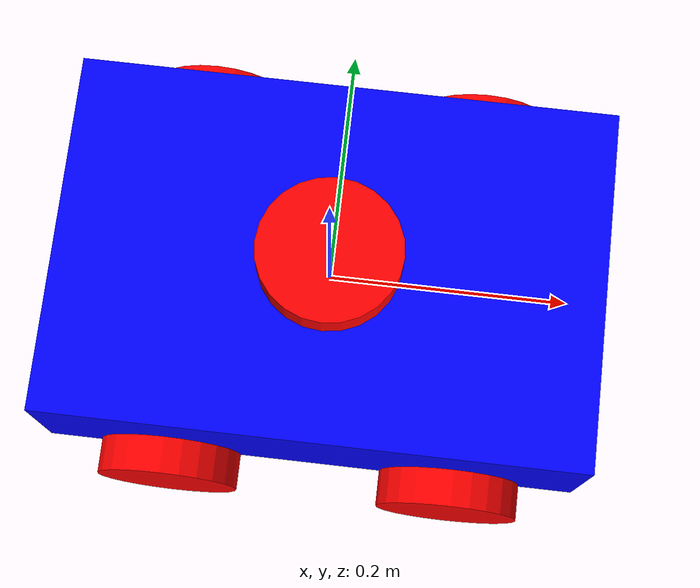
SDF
<sdf version='1.11'>
	<model name='Mobile_robot'>
		<link name='chassis'>
			<pose> 0 0 0 0 0 0</pose>
			<inertial>
				<mass>2</mass>
				<inertia>
					<ixx>0.03375</ixx>
					<ixy>0</ixy>
					<ixz>0</ixz>
					<iyy>0.015</iyy>
					<iyz>0</iyz>
					<izz>0.04875</izz>
				</inertia>
			</inertial>
			<visual name='visual'>
				<geometry>
					<box>
						<size>0.45 0.3 0.12</size>
					</box>
				</geometry>
				<material>
					<ambient>0.0 0.0 1.0 1</ambient>
					<diffuse>0.0 0.0 1.0 1</diffuse>
					<specular>0.0 0.0 1.0 1</specular>
				</material>
			</visual>
			<collision name='collision'>
				<geometry>
					<box>
						<size>0.45 0.3 0.12</size>
					</box>
				</geometry>
			</collision>
		</link>
		<link name='front_left_wheel'>
			<pose relative_to="chassis">0.12 0.165 -0.06 -1.5707 0 0</pose>
			<inertial>
				<mass>1</mass>
				<inertia>
					<ixx>0.000975</ixx>
					<ixy>0</ixy>
					<ixz>0</ixz>
					<iyy>0.000975</iyy>
					<iyz>0</iyz>
					<izz>0.0018</izz>
				</inertia>
			</inertial>
			<visual name='visual'>
				<geometry>
					<cylinder>
						<radius>0.06</radius>
						<length>0.03</length>
					</cylinder>
				</geometry>
				<material>
					<ambient>1.0 0.0 0.0 1</ambient>
					<diffuse>1.0 0.0 0.0 1</diffuse>
					<specular>1.0 0.0 0.0 1</specular>
				</material>
			</visual>
			<collision name='collision'>
				<geometry>
					<cylinder>
						<radius>0.06</radius>
						<length>0.03</length>
					</cylinder>
				</geometry>
			</collision>
		</link>
		<joint name='front_left_wheel_joint' type='revolute'>
			<pose relative_to='front_left_wheel'/>
			<parent>chassis</parent>
			<child>front_left_wheel</child>
			<axis>
				<xyz expressed_in='__model__'>0 1 0</xyz>
				<limit>
					<lower>-1.79769e+308</lower> <!--negative infinity-->
					<upper>1.79769e+308</upper> <!--positive infinity-->
				</limit>
			</axis>
		</joint>
		<link name='rear_left_wheel'>
			<pose relative_to="chassis">-0.12 0.165 -0.06 -1.5707 0 0</pose>
			<inertial>
				<mass>1</mass>
				<inertia>
					<ixx>0.000975</ixx>
					<ixy>0</ixy>
					<ixz>0</ixz>
					<iyy>0.000975</iyy>
					<iyz>0</iyz>
					<izz>0.00018</izz>
				</inertia>
			</inertial>
			<visual name='visual'>
				<geometry>
					<cylinder>
						<radius>0.06</radius>
						<length>0.03</length>
					</cylinder>
				</geometry>
				<material>
					<ambient>1.0 0.0 0.0 1</ambient>
					<diffuse>1.0 0.0 0.0 1</diffuse>
					<specular>1.0 0.0 0.0 1</specular>
				</material>
			</visual>
			<collision name='collision'>
				<geometry>
					<cylinder>
						<radius>0.06</radius>
						<length>0.03</length>
					</cylinder>
				</geometry>
			</collision>
		</link>
		<joint name='rear_left_wheel_joint' type='revolute'>
			<pose relative_to='rear_left_wheel'/>
			<parent>chassis</parent>
			<child>rear_left_wheel</child>
			<axis>
				<xyz expressed_in='__model__'>0 1 0</xyz>
				<limit>
					<lower>-1.79769e+308</lower>
					<upper>1.79769e+308</upper>
				</limit>
			</axis>
		</joint>
		<link name='front_right_wheel'>
			<pose relative_to="chassis">0.12 -0.165 -0.06 -1.5707 0 0</pose>
			<inertial>
				<mass>1</mass>
				<inertia>
					<ixx>0.000975</ixx>
					<ixy>0</ixy>
					<ixz>0</ixz>
					<iyy>0.000975</iyy>
					<iyz>0</iyz>
					<izz>0.0018</izz>
				</inertia>
			</inertial>
			<visual name='visual'>
				<geometry>
					<cylinder>
						<radius>0.06</radius>
						<length>0.03</length>
					</cylinder>
				</geometry>
				<material>
					<ambient>1.0 0.0 0.0 1</ambient>
					<diffuse>1.0 0.0 0.0 1</diffuse>
					<specular>1.0 0.0 0.0 1</specular>
				</material>
			</visual>
			<collision name='collision'>
				<geometry>
					<cylinder>
						<radius>0.06</radius>
						<length>0.03</length>
					</cylinder>
				</geometry>
			</collision>
		</link>
		<joint name='front_right_wheel_joint' type='revolute'>
			<pose relative_to='front_right_wheel'/>
			<parent>chassis</parent>
			<child>front_right_wheel</child>
			<axis>
				<xyz expressed_in='__model__'>0 1 0</xyz>
				<limit>
					<lower>-1.79769e+308</lower>
					<upper>1.79769e+308</upper>
				</limit>
			</axis>
		</joint>
		<link name='rear_right_wheel'>
			<pose relative_to="chassis">-0.12 -0.165 -0.06 -1.5707 0 0</pose>
			<inertial>
				<mass>1</mass>
				<inertia>
					<ixx>0.000975</ixx>
					<ixy>0</ixy>
					<ixz>0</ixz>
					<iyy>0.000975</iyy>
					<iyz>0</iyz>
					<izz>0.0018</izz>
				</inertia>
			</inertial>
			<visual name='visual'>
				<geometry>
					<cylinder>
						<radius>0.06</radius>
						<length>0.03</length>
					</cylinder>
				</geometry>
				<material>
					<ambient>1.0 0.0 0.0 1</ambient>
					<diffuse>1.0 0.0 0.0 1</diffuse>
					<specular>1.0 0.0 0.0 1</specular>
				</material>
			</visual>
			<collision name='collision'>
				<geometry>
					<cylinder>
						<radius>0.06</radius>
						<length>0.03</length>
					</cylinder>
				</geometry>
			</collision>
		</link>
		<joint name='rear_right_wheel_joint' type='revolute'>
			<pose relative_to='rear_right_wheel'/>
			<parent>chassis</parent>
			<child>rear_right_wheel</child>
			<axis>
				<xyz expressed_in='__model__'>0 1 0</xyz>
				<limit>
					<lower>-1.79769e+308</lower>
					<upper>1.79769e+308</upper>
				</limit>
			</axis>
		</joint>
		<link name='lidar_frame'>
			<pose relative_to="chassis">0 0 0.075 0 0 0</pose>
			<inertial>
				<mass>1</mass>
				<inertia>
					<ixx>0.000975</ixx>
					<ixy>0</ixy>
					<ixz>0</ixz>
					<iyy>0.000975</iyy>
					<iyz>0</iyz>
					<izz>0.0018</izz>
				</inertia>
			</inertial>
			<visual name='visual'>
				<geometry>
					<cylinder>
						<radius>0.06</radius>
						<length>0.03</length>
					</cylinder>
				</geometry>
				<material>
					<ambient>1.0 0.0 0.0 1</ambient>
					<diffuse>1.0 0.0 0.0 1</diffuse>
					<specular>1.0 0.0 0.0 1</specular>
				</material>
			</visual>
			<collision name='collision'>
				<geometry>
					<cylinder>
						<radius>0.06</radius>
						<length>0.03</length>
					</cylinder>
				</geometry>
			</collision>
		</link>
		<joint name='lidar_frame_joint' type='fixed'>
			<pose relative_to='lidar_frame'/>
			<parent>chassis</parent>
			<child>lidar_frame</child>
			<axis>
				<xyz expressed_in='__model__'>0 1 0</xyz>
			</axis>
		</joint>
		<gazebo refrence='lidar_frame'>
			<sensor name='lidar' type='gpu_lidar'>
				<pose>0 0 0 0 0 0</pose>
				<visualize>false</visualize>
				<update_rate>10</update_rate>
				<lidar>
					<scan>
						<horizontal>
							<samples>360</samples>
							<min_angle>-3.14</min_angle>
							<max_angle>3.14</max_angle>
						</horizontal>
					</scan>
					<range>
						<min>0.3</min>
						<max>12</max>
					</range>
				</lidar>
				<topic>scan</topic>
				<gz_frame_id>lidar_frame</gz_frame_id>
			</sensor>
		</gazebo>
		<plugin
			filename="gz-sim-diff-drive-system"
			name="gz::sim::systems::DiffDrive">
			<left_joint>front_left_wheel_joint</left_joint>
			<right_joint>front_right_wheel_joint</right_joint>
			<wheel_separation>0.48</wheel_separation>
			<wheel_radius>0.06</wheel_radius>
			<topic>/cmd_vel</topic>
		</plugin>
		<plugin
                        filename="gz-sim-diff-drive-system"
                        name="gz::sim::systems::DiffDrive">
                        <left_joint>rear_left_wheel_joint</left_joint>
                        <right_joint>rear_right_wheel_joint</right_joint>
                        <wheel_separation>0.48</wheel_separation>
                        <wheel_radius>0.06</wheel_radius>
                        <topic>/cmd_vel</topic>
                </plugin>
	</model>
</sdf>
